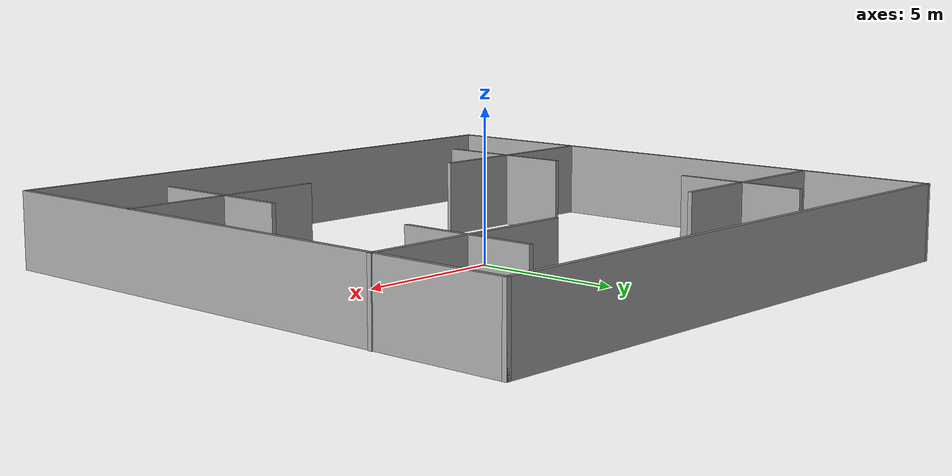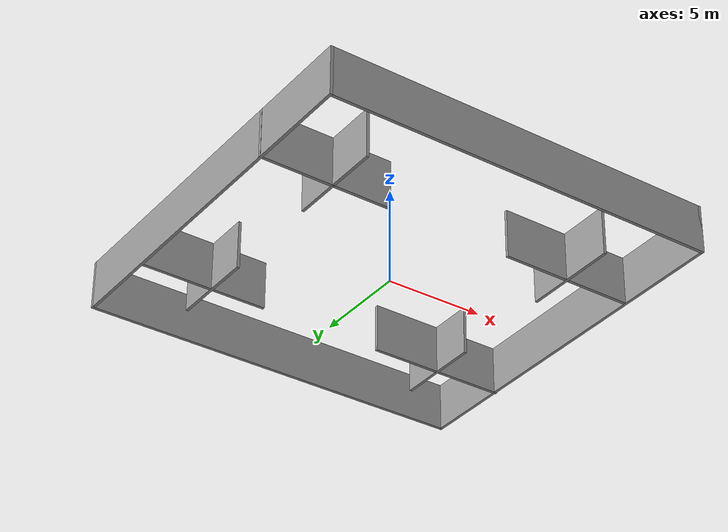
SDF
<?xml version='1.0'?>
<sdf version='1.6'>
  <model name='Train_Building'>
    <pose frame=''>0.066582 -0.063278 0 0 -0 0</pose>
    <link name='Wall_10'>
      <collision name='Wall_10_Collision'>
        <geometry>
          <box>
            <size>20.25 0.15 2.5</size>
          </box>
        </geometry>
        <pose frame=''>0 0 1.25 0 -0 0</pose>
      </collision>
      <visual name='Wall_10_Visual'>
        <pose frame=''>0 0 1.25 0 -0 0</pose>
        <geometry>
          <box>
            <size>20.25 0.15 2.5</size>
          </box>
        </geometry>
        <material>
          <script>
            <uri>file://media/materials/scripts/gazebo.material</uri>
            <name>Gazebo/Grey</name>
          </script>
          <ambient>1 1 1 1</ambient>
        </material>
        <meta>
          <layer>0</layer>
        </meta>
      </visual>
      <pose frame=''>-0.01568 -9.925 0 0 -0 0</pose>
    </link>
    <link name='Wall_11'>
      <collision name='Wall_11_Collision'>
        <geometry>
          <box>
            <size>20 0.15 2.5</size>
          </box>
        </geometry>
        <pose frame=''>0 0 1.25 0 -0 0</pose>
      </collision>
      <visual name='Wall_11_Visual'>
        <pose frame=''>0 0 1.25 0 -0 0</pose>
        <geometry>
          <box>
            <size>20 0.15 2.5</size>
          </box>
        </geometry>
        <material>
          <script>
            <uri>file://media/materials/scripts/gazebo.material</uri>
            <name>Gazebo/Grey</name>
          </script>
          <ambient>1 1 1 1</ambient>
        </material>
        <meta>
          <layer>0</layer>
        </meta>
      </visual>
      <pose frame=''>10.0343 0 0 0 -0 1.5708</pose>
    </link>
    <link name='Wall_26'>
      <collision name='Wall_26_Collision'>
        <geometry>
          <box>
            <size>6.75 0.15 2.5</size>
          </box>
        </geometry>
        <pose frame=''>0 0 1.25 0 -0 0</pose>
      </collision>
      <visual name='Wall_26_Visual'>
        <pose frame=''>0 0 1.25 0 -0 0</pose>
        <geometry>
          <box>
            <size>6.75 0.15 2.5</size>
          </box>
        </geometry>
        <material>
          <script>
            <uri>file://media/materials/scripts/gazebo.material</uri>
            <name>Gazebo/Grey</name>
          </script>
          <ambient>1 1 1 1</ambient>
        </material>
        <meta>
          <layer>0</layer>
        </meta>
      </visual>
      <pose frame=''>-6.77344 -4.66244 0 0 -0 0</pose>
    </link>
    <link name='Wall_28'>
      <collision name='Wall_28_Collision'>
        <geometry>
          <box>
            <size>7 0.15 2.5</size>
          </box>
        </geometry>
        <pose frame=''>0 0 1.25 0 -0 0</pose>
      </collision>
      <visual name='Wall_28_Visual'>
        <pose frame=''>0 0 1.25 0 -0 0</pose>
        <geometry>
          <box>
            <size>7 0.15 2.5</size>
          </box>
        </geometry>
        <material>
          <script>
            <uri>file://media/materials/scripts/gazebo.material</uri>
            <name>Gazebo/Grey</name>
          </script>
          <ambient>1 1 1 1</ambient>
        </material>
        <meta>
          <layer>0</layer>
        </meta>
      </visual>
      <pose frame=''>6.56753 -4.62199 0 0 -0 3.14159</pose>
    </link>
    <link name='Wall_30'>
      <collision name='Wall_30_Collision'>
        <geometry>
          <box>
            <size>6.5 0.15 2.5</size>
          </box>
        </geometry>
        <pose frame=''>0 0 1.25 0 -0 0</pose>
      </collision>
      <visual name='Wall_30_Visual'>
        <pose frame=''>0 0 1.25 0 -0 0</pose>
        <geometry>
          <box>
            <size>6.5 0.15 2.5</size>
          </box>
        </geometry>
        <material>
          <script>
            <uri>file://media/materials/scripts/gazebo.material</uri>
            <name>Gazebo/Grey</name>
          </script>
          <ambient>1 1 1 1</ambient>
        </material>
        <meta>
          <layer>0</layer>
        </meta>
      </visual>
      <pose frame=''>-6.77707 5.411 0 0 -0 0</pose>
    </link>
    <link name='Wall_32'>
      <collision name='Wall_32_Collision'>
        <geometry>
          <box>
            <size>7.25 0.15 2.5</size>
          </box>
        </geometry>
        <pose frame=''>0 0 1.25 0 -0 0</pose>
      </collision>
      <visual name='Wall_32_Visual'>
        <pose frame=''>0 0 1.25 0 -0 0</pose>
        <geometry>
          <box>
            <size>7.25 0.15 2.5</size>
          </box>
        </geometry>
        <material>
          <script>
            <uri>file://media/materials/scripts/gazebo.material</uri>
            <name>Gazebo/Grey</name>
          </script>
          <ambient>1 1 1 1</ambient>
        </material>
        <meta>
          <layer>0</layer>
        </meta>
      </visual>
      <pose frame=''>6.52344 5.45145 0 0 -0 3.14159</pose>
    </link>
    <link name='Wall_34'>
      <collision name='Wall_34_Collision'>
        <geometry>
          <box>
            <size>4.5 0.15 2.5</size>
          </box>
        </geometry>
        <pose frame=''>0 0 1.25 0 -0 0</pose>
      </collision>
      <visual name='Wall_34_Visual'>
        <pose frame=''>0 0 1.25 0 -0 0</pose>
        <geometry>
          <box>
            <size>4.5 0.15 2.5</size>
          </box>
        </geometry>
        <material>
          <script>
            <uri>file://media/materials/scripts/gazebo.material</uri>
            <name>Gazebo/Grey</name>
          </script>
          <ambient>1 1 1 1</ambient>
        </material>
        <meta>
          <layer>0</layer>
        </meta>
      </visual>
      <pose frame=''>-6.359 5.35775 0 0 -0 1.5708</pose>
    </link>
    <link name='Wall_36'>
      <collision name='Wall_36_Collision'>
        <geometry>
          <box>
            <size>4.5 0.15 2.5</size>
          </box>
        </geometry>
        <pose frame=''>0 0 1.25 0 -0 0</pose>
      </collision>
      <visual name='Wall_36_Visual'>
        <pose frame=''>0 0 1.25 0 -0 0</pose>
        <geometry>
          <box>
            <size>4.5 0.15 2.5</size>
          </box>
        </geometry>
        <material>
          <script>
            <uri>file://media/materials/scripts/gazebo.material</uri>
            <name>Gazebo/Grey</name>
          </script>
          <ambient>1 1 1 1</ambient>
        </material>
        <meta>
          <layer>0</layer>
        </meta>
      </visual>
      <pose frame=''>6.52812 5.40427 0 0 -0 1.5708</pose>
    </link>
    <link name='Wall_38'>
      <collision name='Wall_38_Collision'>
        <geometry>
          <box>
            <size>5 0.15 2.5</size>
          </box>
        </geometry>
        <pose frame=''>0 0 1.25 0 -0 0</pose>
      </collision>
      <visual name='Wall_38_Visual'>
        <pose frame=''>0 0 1.25 0 -0 0</pose>
        <geometry>
          <box>
            <size>5 0.15 2.5</size>
          </box>
        </geometry>
        <material>
          <script>
            <uri>file://media/materials/scripts/gazebo.material</uri>
            <name>Gazebo/Grey</name>
          </script>
          <ambient>1 1 1 1</ambient>
        </material>
        <meta>
          <layer>0</layer>
        </meta>
      </visual>
      <pose frame=''>6.52812 -4.85479 0 0 0 -1.5708</pose>
    </link>
    <link name='Wall_41'>
      <collision name='Wall_41_Collision'>
        <geometry>
          <box>
            <size>5 0.15 2.5</size>
          </box>
        </geometry>
        <pose frame=''>0 0 1.25 0 -0 0</pose>
      </collision>
      <visual name='Wall_41_Visual'>
        <pose frame=''>0 0 1.25 0 -0 0</pose>
        <geometry>
          <box>
            <size>5 0.15 2.5</size>
          </box>
        </geometry>
        <material>
          <script>
            <uri>file://media/materials/scripts/gazebo.material</uri>
            <name>Gazebo/Grey</name>
          </script>
          <ambient>1 1 1 1</ambient>
        </material>
        <meta>
          <layer>0</layer>
        </meta>
      </visual>
      <pose frame=''>-6.40553 -4.80827 0 0 0 -1.5708</pose>
    </link>
    <link name='Wall_5'>
      <collision name='Wall_5_Collision'>
        <geometry>
          <box>
            <size>20.25 0.15 2.5</size>
          </box>
        </geometry>
        <pose frame=''>0 0 1.25 0 -0 0</pose>
      </collision>
      <visual name='Wall_5_Visual'>
        <pose frame=''>0 0 1.25 0 -0 0</pose>
        <geometry>
          <box>
            <size>20.25 0.15 2.5</size>
          </box>
        </geometry>
        <material>
          <script>
            <uri>file://media/materials/scripts/gazebo.material</uri>
            <name>Gazebo/Grey</name>
          </script>
          <ambient>1 1 1 1</ambient>
        </material>
        <meta>
          <layer>0</layer>
        </meta>
      </visual>
      <pose frame=''>-0.01568 9.925 0 0 -0 0</pose>
    </link>
    <link name='Wall_8'>
      <collision name='Wall_8_Collision'>
        <geometry>
          <box>
            <size>20 0.15 2.5</size>
          </box>
        </geometry>
        <pose frame=''>0 0 1.25 0 -0 0</pose>
      </collision>
      <visual name='Wall_8_Visual'>
        <pose frame=''>0 0 1.25 0 -0 0</pose>
        <geometry>
          <box>
            <size>20 0.15 2.5</size>
          </box>
        </geometry>
        <material>
          <script>
            <uri>file://media/materials/scripts/gazebo.material</uri>
            <name>Gazebo/Grey</name>
          </script>
          <ambient>1 1 1 1</ambient>
        </material>
        <meta>
          <layer>0</layer>
        </meta>
      </visual>
      <pose frame=''>-10.0657 0 0 0 0 -1.5708</pose>
    </link>
    <static>1</static>
  </model>
</sdf>
